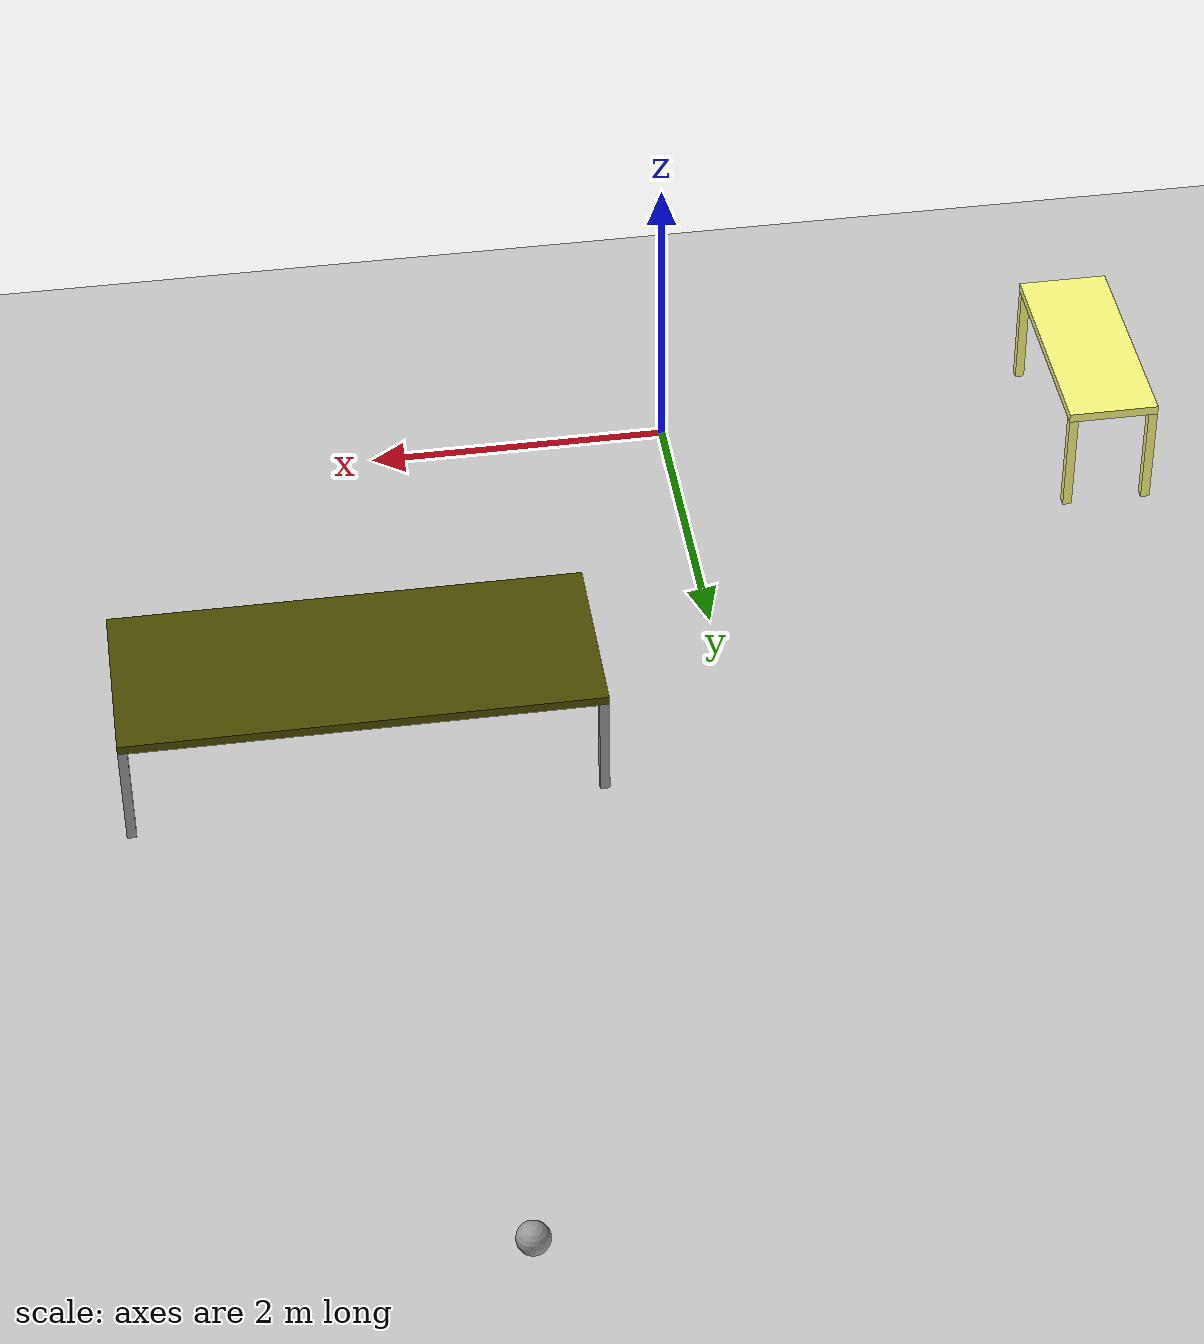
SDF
<sdf version="1.6">
 <world name="default">
  <model name="ground_plane">
   <static>1</static>
   <link name="link">
    <collision name="collision">
     <geometry><plane><normal>0 0 1</normal><size>100 100</size></plane></geometry>
     <surface><friction><ode><mu>100</mu><mu2>50</mu2></ode></friction></surface>
    </collision>
    <visual name="visual">
     <cast_shadows>0</cast_shadows>
     <geometry><plane><normal>0 0 1</normal><size>100 100</size></plane></geometry>
     <material>
      <script><uri>file://media/materials/scripts/gazebo.material</uri><name>Gazebo/Grey</name></script>
     </material>
    </visual>
   </link>
  </model>
  <model name="table_clone_5">
   <link name="link_0">
    <pose>0 2e-06 0.304 0 -0 0</pose>
    <inertial>
     <mass>1</mass>
     <inertia>
      <ixx>0.166667</ixx>
      <ixy>0</ixy>
      <ixz>0</ixz>
      <iyy>0.166667</iyy>
      <iyz>0</iyz>
      <izz>0.166667</izz>
     </inertia>
    </inertial>
    <visual name="visual">
     <geometry><box><size>0.6 1.5 0.06</size></box></geometry>
     <material>
      <lighting>1</lighting>
      <script><uri>file://media/materials/scripts/gazebo.material</uri><name>Gazebo/Grey</name></script>
      <shader type="pixel"><normal_map>__default__</normal_map></shader>
      <ambient>1 1 0.5 1</ambient>
      <diffuse>0.7 0.7 0.7 1</diffuse>
      <specular>0.01 0.01 0.01 1</specular>
      <emissive>0 0 0 1</emissive>
     </material>
    </visual>
    <collision name="collision">
     <geometry><box><size>0.6 1.5 0.06</size></box></geometry>
     <surface>
      <friction>
       <ode><mu>1</mu><mu2>1</mu2><fdir1>0 0 0</fdir1><slip1>0</slip1><slip2>0</slip2></ode>
       <torsional>
        <coefficient>1</coefficient>
        <patch_radius>0</patch_radius>
        <surface_radius>0</surface_radius>
        <use_patch_radius>1</use_patch_radius>
        <ode><slip>0</slip></ode>
       </torsional>
      </friction>
      <bounce><restitution_coefficient>0</restitution_coefficient><threshold>1e+06</threshold></bounce>
      <contact>
       <collide_without_contact>0</collide_without_contact>
       <collide_without_contact_bitmask>1</collide_without_contact_bitmask>
       <collide_bitmask>1</collide_bitmask>
       <ode>
        <soft_cfm>0</soft_cfm>
        <soft_erp>0.2</soft_erp>
        <kp>1e+13</kp>
        <kd>1</kd>
        <max_vel>0.01</max_vel>
        <min_depth>0</min_depth>
       </ode>
       <bullet>
        <split_impulse>1</split_impulse>
        <split_impulse_penetration_threshold>-0.01</split_impulse_penetration_threshold>
        <soft_cfm>0</soft_cfm>
        <soft_erp>0.2</soft_erp>
        <kp>1e+13</kp>
        <kd>1</kd>
       </bullet>
      </contact>
     </surface>
    </collision>
   </link>
   <link name="link_1">
    <pose>0.27 -0.719998 -0.076 0 -0 0</pose>
    <inertial>
     <mass>1</mass>
     <inertia>
      <ixx>0.166667</ixx>
      <ixy>0</ixy>
      <ixz>0</ixz>
      <iyy>0.166667</iyy>
      <iyz>0</iyz>
      <izz>0.166667</izz>
     </inertia>
    </inertial>
    <visual name="visual">
     <geometry><box><size>0.06 0.06 0.7</size></box></geometry>
     <material>
      <lighting>1</lighting>
      <script><uri>file://media/materials/scripts/gazebo.material</uri><name>Gazebo/Grey</name></script>
      <shader type="pixel"><normal_map>__default__</normal_map></shader>
      <ambient>1 1 0.5 1</ambient>
      <diffuse>0.7 0.7 0.7 1</diffuse>
      <specular>0.01 0.01 0.01 1</specular>
      <emissive>0 0 0 1</emissive>
     </material>
    </visual>
    <collision name="collision">
     <geometry><box><size>0.06 0.06 0.7</size></box></geometry>
     <surface>
      <friction>
       <ode><mu>1</mu><mu2>1</mu2><fdir1>0 0 0</fdir1><slip1>0</slip1><slip2>0</slip2></ode>
       <torsional>
        <coefficient>1</coefficient>
        <patch_radius>0</patch_radius>
        <surface_radius>0</surface_radius>
        <use_patch_radius>1</use_patch_radius>
        <ode><slip>0</slip></ode>
       </torsional>
      </friction>
      <bounce><restitution_coefficient>0</restitution_coefficient><threshold>1e+06</threshold></bounce>
      <contact>
       <collide_without_contact>0</collide_without_contact>
       <collide_without_contact_bitmask>1</collide_without_contact_bitmask>
       <collide_bitmask>1</collide_bitmask>
       <ode>
        <soft_cfm>0</soft_cfm>
        <soft_erp>0.2</soft_erp>
        <kp>1e+13</kp>
        <kd>1</kd>
        <max_vel>0.01</max_vel>
        <min_depth>0</min_depth>
       </ode>
       <bullet>
        <split_impulse>1</split_impulse>
        <split_impulse_penetration_threshold>-0.01</split_impulse_penetration_threshold>
        <soft_cfm>0</soft_cfm>
        <soft_erp>0.2</soft_erp>
        <kp>1e+13</kp>
        <kd>1</kd>
       </bullet>
      </contact>
     </surface>
    </collision>
   </link>
   <link name="link_1_clone">
    <pose>-0.27 -0.719998 -0.076 0 -0 0</pose>
    <inertial>
     <mass>1</mass>
     <inertia>
      <ixx>0.166667</ixx>
      <ixy>0</ixy>
      <ixz>0</ixz>
      <iyy>0.166667</iyy>
      <iyz>0</iyz>
      <izz>0.166667</izz>
     </inertia>
    </inertial>
    <visual name="visual">
     <geometry><box><size>0.06 0.06 0.7</size></box></geometry>
     <material>
      <lighting>1</lighting>
      <script><uri>file://media/materials/scripts/gazebo.material</uri><name>Gazebo/Grey</name></script>
      <shader type="pixel"><normal_map>__default__</normal_map></shader>
      <ambient>1 1 0.5 1</ambient>
      <diffuse>0.7 0.7 0.7 1</diffuse>
      <specular>0.01 0.01 0.01 1</specular>
      <emissive>0 0 0 1</emissive>
     </material>
    </visual>
    <collision name="collision">
     <geometry><box><size>0.06 0.06 0.7</size></box></geometry>
     <surface>
      <friction>
       <ode><mu>1</mu><mu2>1</mu2><fdir1>0 0 0</fdir1><slip1>0</slip1><slip2>0</slip2></ode>
       <torsional>
        <coefficient>1</coefficient>
        <patch_radius>0</patch_radius>
        <surface_radius>0</surface_radius>
        <use_patch_radius>1</use_patch_radius>
        <ode><slip>0</slip></ode>
       </torsional>
      </friction>
      <bounce><restitution_coefficient>0</restitution_coefficient><threshold>1e+06</threshold></bounce>
      <contact>
       <collide_without_contact>0</collide_without_contact>
       <collide_without_contact_bitmask>1</collide_without_contact_bitmask>
       <collide_bitmask>1</collide_bitmask>
       <ode>
        <soft_cfm>0</soft_cfm>
        <soft_erp>0.2</soft_erp>
        <kp>1e+13</kp>
        <kd>1</kd>
        <max_vel>0.01</max_vel>
        <min_depth>0</min_depth>
       </ode>
       <bullet>
        <split_impulse>1</split_impulse>
        <split_impulse_penetration_threshold>-0.01</split_impulse_penetration_threshold>
        <soft_cfm>0</soft_cfm>
        <soft_erp>0.2</soft_erp>
        <kp>1e+13</kp>
        <kd>1</kd>
       </bullet>
      </contact>
     </surface>
    </collision>
   </link>
   <link name="link_1_clone_0">
    <pose>0.27 0.720002 -0.076 0 -0 0</pose>
    <inertial>
     <mass>1</mass>
     <inertia>
      <ixx>0.166667</ixx>
      <ixy>0</ixy>
      <ixz>0</ixz>
      <iyy>0.166667</iyy>
      <iyz>0</iyz>
      <izz>0.166667</izz>
     </inertia>
    </inertial>
    <visual name="visual">
     <geometry><box><size>0.06 0.06 0.7</size></box></geometry>
     <material>
      <lighting>1</lighting>
      <script><uri>file://media/materials/scripts/gazebo.material</uri><name>Gazebo/Grey</name></script>
      <shader type="pixel"><normal_map>__default__</normal_map></shader>
      <ambient>1 1 0.5 1</ambient>
      <diffuse>0.7 0.7 0.7 1</diffuse>
      <specular>0.01 0.01 0.01 1</specular>
      <emissive>0 0 0 1</emissive>
     </material>
    </visual>
    <collision name="collision">
     <geometry><box><size>0.06 0.06 0.7</size></box></geometry>
     <surface>
      <friction>
       <ode><mu>1</mu><mu2>1</mu2><fdir1>0 0 0</fdir1><slip1>0</slip1><slip2>0</slip2></ode>
       <torsional>
        <coefficient>1</coefficient>
        <patch_radius>0</patch_radius>
        <surface_radius>0</surface_radius>
        <use_patch_radius>1</use_patch_radius>
        <ode><slip>0</slip></ode>
       </torsional>
      </friction>
      <bounce><restitution_coefficient>0</restitution_coefficient><threshold>1e+06</threshold></bounce>
      <contact>
       <collide_without_contact>0</collide_without_contact>
       <collide_without_contact_bitmask>1</collide_without_contact_bitmask>
       <collide_bitmask>1</collide_bitmask>
       <ode>
        <soft_cfm>0</soft_cfm>
        <soft_erp>0.2</soft_erp>
        <kp>1e+13</kp>
        <kd>1</kd>
        <max_vel>0.01</max_vel>
        <min_depth>0</min_depth>
       </ode>
       <bullet>
        <split_impulse>1</split_impulse>
        <split_impulse_penetration_threshold>-0.01</split_impulse_penetration_threshold>
        <soft_cfm>0</soft_cfm>
        <soft_erp>0.2</soft_erp>
        <kp>1e+13</kp>
        <kd>1</kd>
       </bullet>
      </contact>
     </surface>
    </collision>
   </link>
   <link name="link_1_clone_1">
    <pose>-0.27 0.720002 -0.076 0 -0 0</pose>
    <inertial>
     <mass>1</mass>
     <inertia>
      <ixx>0.166667</ixx>
      <ixy>0</ixy>
      <ixz>0</ixz>
      <iyy>0.166667</iyy>
      <iyz>0</iyz>
      <izz>0.166667</izz>
     </inertia>
    </inertial>
    <visual name="visual">
     <geometry><box><size>0.06 0.06 0.7</size></box></geometry>
     <material>
      <lighting>1</lighting>
      <script><uri>file://media/materials/scripts/gazebo.material</uri><name>Gazebo/Grey</name></script>
      <shader type="pixel"><normal_map>__default__</normal_map></shader>
      <ambient>1 1 0.5 1</ambient>
      <diffuse>0.7 0.7 0.7 1</diffuse>
      <specular>0.01 0.01 0.01 1</specular>
      <emissive>0 0 0 1</emissive>
     </material>
    </visual>
    <collision name="collision">
     <geometry><box><size>0.06 0.06 0.7</size></box></geometry>
     <surface>
      <friction>
       <ode><mu>1</mu><mu2>1</mu2><fdir1>0 0 0</fdir1><slip1>0</slip1><slip2>0</slip2></ode>
       <torsional>
        <coefficient>1</coefficient>
        <patch_radius>0</patch_radius>
        <surface_radius>0</surface_radius>
        <use_patch_radius>1</use_patch_radius>
        <ode><slip>0</slip></ode>
       </torsional>
      </friction>
      <bounce><restitution_coefficient>0</restitution_coefficient><threshold>1e+06</threshold></bounce>
      <contact>
       <collide_without_contact>0</collide_without_contact>
       <collide_without_contact_bitmask>1</collide_without_contact_bitmask>
       <collide_bitmask>1</collide_bitmask>
       <ode>
        <soft_cfm>0</soft_cfm>
        <soft_erp>0.2</soft_erp>
        <kp>1e+13</kp>
        <kd>1</kd>
        <max_vel>0.01</max_vel>
        <min_depth>0</min_depth>
       </ode>
       <bullet>
        <split_impulse>1</split_impulse>
        <split_impulse_penetration_threshold>-0.01</split_impulse_penetration_threshold>
        <soft_cfm>0</soft_cfm>
        <soft_erp>0.2</soft_erp>
        <kp>1e+13</kp>
        <kd>1</kd>
       </bullet>
      </contact>
     </surface>
    </collision>
   </link>
   <joint name="link_0_JOINT_0" type="fixed">
    <parent>link_0</parent>
    <child>link_1</child>
    <physics>
     <ode><limit><cfm>0</cfm><erp>0.2</erp></limit><suspension><cfm>0</cfm><erp>0.2</erp></suspension></ode>
    </physics>
   </joint>
   <joint name="link_0_JOINT_1" type="fixed">
    <parent>link_0</parent>
    <child>link_1_clone</child>
    <physics>
     <ode><limit><cfm>0</cfm><erp>0.2</erp></limit><suspension><cfm>0</cfm><erp>0.2</erp></suspension></ode>
    </physics>
   </joint>
   <joint name="link_0_JOINT_2" type="fixed">
    <parent>link_0</parent>
    <child>link_1_clone_1</child>
    <physics>
     <ode><limit><cfm>0</cfm><erp>0.2</erp></limit><suspension><cfm>0</cfm><erp>0.2</erp></suspension></ode>
    </physics>
   </joint>
   <joint name="link_0_JOINT_3" type="fixed">
    <parent>link_0</parent>
    <child>link_1_clone_0</child>
    <physics>
     <ode><limit><cfm>0</cfm><erp>0.2</erp></limit><suspension><cfm>0</cfm><erp>0.2</erp></suspension></ode>
    </physics>
   </joint>
   <static>0</static>
   <pose>-2.85466 0.440938 0.426 0 -1e-06 -0.000235</pose>
  </model>
  <model name="bigtable_0_clone">
   <link name="link_0">
    <pose>0 0 0.3 0 -0 0</pose>
    <inertial>
     <mass>1</mass>
     <inertia>
      <ixx>0.166667</ixx>
      <ixy>0</ixy>
      <ixz>0</ixz>
      <iyy>0.166667</iyy>
      <iyz>0</iyz>
      <izz>0.166667</izz>
     </inertia>
    </inertial>
    <visual name="visual">
     <geometry><box><size>1.2 3 0.06</size></box></geometry>
     <material>
      <lighting>1</lighting>
      <script><uri>file://media/materials/scripts/gazebo.material</uri><name>Gazebo/Grey</name></script>
      <shader type="pixel"><normal_map>__default__</normal_map></shader>
      <ambient>0.3 0.3 0 1</ambient>
      <diffuse>0.7 0.7 0.7 1</diffuse>
      <specular>0.01 0.01 0.01 1</specular>
      <emissive>0 0 0 1</emissive>
     </material>
    </visual>
    <collision name="collision">
     <geometry><box><size>1.2 3 0.06</size></box></geometry>
     <surface>
      <friction>
       <ode><mu>1</mu><mu2>1</mu2><fdir1>0 0 0</fdir1><slip1>0</slip1><slip2>0</slip2></ode>
       <torsional>
        <coefficient>1</coefficient>
        <patch_radius>0</patch_radius>
        <surface_radius>0</surface_radius>
        <use_patch_radius>1</use_patch_radius>
        <ode><slip>0</slip></ode>
       </torsional>
      </friction>
      <bounce><restitution_coefficient>0</restitution_coefficient><threshold>1e+06</threshold></bounce>
      <contact>
       <collide_without_contact>0</collide_without_contact>
       <collide_without_contact_bitmask>1</collide_without_contact_bitmask>
       <collide_bitmask>1</collide_bitmask>
       <ode>
        <soft_cfm>0</soft_cfm>
        <soft_erp>0.2</soft_erp>
        <kp>1e+13</kp>
        <kd>1</kd>
        <max_vel>0.01</max_vel>
        <min_depth>0</min_depth>
       </ode>
       <bullet>
        <split_impulse>1</split_impulse>
        <split_impulse_penetration_threshold>-0.01</split_impulse_penetration_threshold>
        <soft_cfm>0</soft_cfm>
        <soft_erp>0.2</soft_erp>
        <kp>1e+13</kp>
        <kd>1</kd>
       </bullet>
      </contact>
     </surface>
    </collision>
   </link>
   <link name="link_1">
    <pose>-0.57 -1.47 -0.076 0 -0 0</pose>
    <inertial>
     <mass>1</mass>
     <inertia>
      <ixx>0.166667</ixx>
      <ixy>0</ixy>
      <ixz>0</ixz>
      <iyy>0.166667</iyy>
      <iyz>0</iyz>
      <izz>0.166667</izz>
     </inertia>
    </inertial>
    <visual name="visual">
     <geometry><box><size>0.06 0.06 0.7</size></box></geometry>
     <material>
      <lighting>1</lighting>
      <script><uri>file://media/materials/scripts/gazebo.material</uri><name>Gazebo/Grey</name></script>
      <shader type="pixel"><normal_map>__default__</normal_map></shader>
      <ambient>0.3 0.3 0.3 1</ambient>
      <diffuse>0.7 0.7 0.7 1</diffuse>
      <specular>0.01 0.01 0.01 1</specular>
      <emissive>0 0 0 1</emissive>
     </material>
    </visual>
    <collision name="collision">
     <geometry><box><size>0.06 0.06 0.7</size></box></geometry>
     <surface>
      <friction>
       <ode><mu>1</mu><mu2>1</mu2><fdir1>0 0 0</fdir1><slip1>0</slip1><slip2>0</slip2></ode>
       <torsional>
        <coefficient>1</coefficient>
        <patch_radius>0</patch_radius>
        <surface_radius>0</surface_radius>
        <use_patch_radius>1</use_patch_radius>
        <ode><slip>0</slip></ode>
       </torsional>
      </friction>
      <bounce><restitution_coefficient>0</restitution_coefficient><threshold>1e+06</threshold></bounce>
      <contact>
       <collide_without_contact>0</collide_without_contact>
       <collide_without_contact_bitmask>1</collide_without_contact_bitmask>
       <collide_bitmask>1</collide_bitmask>
       <ode>
        <soft_cfm>0</soft_cfm>
        <soft_erp>0.2</soft_erp>
        <kp>1e+13</kp>
        <kd>1</kd>
        <max_vel>0.01</max_vel>
        <min_depth>0</min_depth>
       </ode>
       <bullet>
        <split_impulse>1</split_impulse>
        <split_impulse_penetration_threshold>-0.01</split_impulse_penetration_threshold>
        <soft_cfm>0</soft_cfm>
        <soft_erp>0.2</soft_erp>
        <kp>1e+13</kp>
        <kd>1</kd>
       </bullet>
      </contact>
     </surface>
    </collision>
   </link>
   <link name="link_1_clone">
    <pose>0.57 -1.47 -0.076 0 -0 0</pose>
    <inertial>
     <mass>1</mass>
     <inertia>
      <ixx>0.166667</ixx>
      <ixy>0</ixy>
      <ixz>0</ixz>
      <iyy>0.166667</iyy>
      <iyz>0</iyz>
      <izz>0.166667</izz>
     </inertia>
    </inertial>
    <visual name="visual">
     <geometry><box><size>0.06 0.06 0.7</size></box></geometry>
     <material>
      <lighting>1</lighting>
      <script><uri>file://media/materials/scripts/gazebo.material</uri><name>Gazebo/Grey</name></script>
      <shader type="pixel"><normal_map>__default__</normal_map></shader>
      <ambient>0.3 0.3 0.3 1</ambient>
      <diffuse>0.7 0.7 0.7 1</diffuse>
      <specular>0.01 0.01 0.01 1</specular>
      <emissive>0 0 0 1</emissive>
     </material>
    </visual>
    <collision name="collision">
     <geometry><box><size>0.06 0.06 0.7</size></box></geometry>
     <surface>
      <friction>
       <ode><mu>1</mu><mu2>1</mu2><fdir1>0 0 0</fdir1><slip1>0</slip1><slip2>0</slip2></ode>
       <torsional>
        <coefficient>1</coefficient>
        <patch_radius>0</patch_radius>
        <surface_radius>0</surface_radius>
        <use_patch_radius>1</use_patch_radius>
        <ode><slip>0</slip></ode>
       </torsional>
      </friction>
      <bounce><restitution_coefficient>0</restitution_coefficient><threshold>1e+06</threshold></bounce>
      <contact>
       <collide_without_contact>0</collide_without_contact>
       <collide_without_contact_bitmask>1</collide_without_contact_bitmask>
       <collide_bitmask>1</collide_bitmask>
       <ode>
        <soft_cfm>0</soft_cfm>
        <soft_erp>0.2</soft_erp>
        <kp>1e+13</kp>
        <kd>1</kd>
        <max_vel>0.01</max_vel>
        <min_depth>0</min_depth>
       </ode>
       <bullet>
        <split_impulse>1</split_impulse>
        <split_impulse_penetration_threshold>-0.01</split_impulse_penetration_threshold>
        <soft_cfm>0</soft_cfm>
        <soft_erp>0.2</soft_erp>
        <kp>1e+13</kp>
        <kd>1</kd>
       </bullet>
      </contact>
     </surface>
    </collision>
   </link>
   <link name="link_1_clone_0">
    <pose>0.57 1.47 -0.076 0 -0 0</pose>
    <inertial>
     <mass>1</mass>
     <inertia>
      <ixx>0.166667</ixx>
      <ixy>0</ixy>
      <ixz>0</ixz>
      <iyy>0.166667</iyy>
      <iyz>0</iyz>
      <izz>0.166667</izz>
     </inertia>
    </inertial>
    <visual name="visual">
     <geometry><box><size>0.06 0.06 0.7</size></box></geometry>
     <material>
      <lighting>1</lighting>
      <script><uri>file://media/materials/scripts/gazebo.material</uri><name>Gazebo/Grey</name></script>
      <shader type="pixel"><normal_map>__default__</normal_map></shader>
      <ambient>0.3 0.3 0.3 1</ambient>
      <diffuse>0.7 0.7 0.7 1</diffuse>
      <specular>0.01 0.01 0.01 1</specular>
      <emissive>0 0 0 1</emissive>
     </material>
    </visual>
    <collision name="collision">
     <geometry><box><size>0.06 0.06 0.7</size></box></geometry>
     <surface>
      <friction>
       <ode><mu>1</mu><mu2>1</mu2><fdir1>0 0 0</fdir1><slip1>0</slip1><slip2>0</slip2></ode>
       <torsional>
        <coefficient>1</coefficient>
        <patch_radius>0</patch_radius>
        <surface_radius>0</surface_radius>
        <use_patch_radius>1</use_patch_radius>
        <ode><slip>0</slip></ode>
       </torsional>
      </friction>
      <bounce><restitution_coefficient>0</restitution_coefficient><threshold>1e+06</threshold></bounce>
      <contact>
       <collide_without_contact>0</collide_without_contact>
       <collide_without_contact_bitmask>1</collide_without_contact_bitmask>
       <collide_bitmask>1</collide_bitmask>
       <ode>
        <soft_cfm>0</soft_cfm>
        <soft_erp>0.2</soft_erp>
        <kp>1e+13</kp>
        <kd>1</kd>
        <max_vel>0.01</max_vel>
        <min_depth>0</min_depth>
       </ode>
       <bullet>
        <split_impulse>1</split_impulse>
        <split_impulse_penetration_threshold>-0.01</split_impulse_penetration_threshold>
        <soft_cfm>0</soft_cfm>
        <soft_erp>0.2</soft_erp>
        <kp>1e+13</kp>
        <kd>1</kd>
       </bullet>
      </contact>
     </surface>
    </collision>
   </link>
   <link name="link_1_clone_1">
    <pose>-0.57 1.47 -0.076 0 -0 0</pose>
    <inertial>
     <mass>1</mass>
     <inertia>
      <ixx>0.166667</ixx>
      <ixy>0</ixy>
      <ixz>0</ixz>
      <iyy>0.166667</iyy>
      <iyz>0</iyz>
      <izz>0.166667</izz>
     </inertia>
    </inertial>
    <visual name="visual">
     <geometry><box><size>0.06 0.06 0.7</size></box></geometry>
     <material>
      <lighting>1</lighting>
      <script><uri>file://media/materials/scripts/gazebo.material</uri><name>Gazebo/Grey</name></script>
      <shader type="pixel"><normal_map>__default__</normal_map></shader>
      <ambient>0.3 0.3 0.3 1</ambient>
      <diffuse>0.7 0.7 0.7 1</diffuse>
      <specular>0.01 0.01 0.01 1</specular>
      <emissive>0 0 0 1</emissive>
     </material>
    </visual>
    <collision name="collision">
     <geometry><box><size>0.06 0.06 0.7</size></box></geometry>
     <surface>
      <friction>
       <ode><mu>1</mu><mu2>1</mu2><fdir1>0 0 0</fdir1><slip1>0</slip1><slip2>0</slip2></ode>
       <torsional>
        <coefficient>1</coefficient>
        <patch_radius>0</patch_radius>
        <surface_radius>0</surface_radius>
        <use_patch_radius>1</use_patch_radius>
        <ode><slip>0</slip></ode>
       </torsional>
      </friction>
      <bounce><restitution_coefficient>0</restitution_coefficient><threshold>1e+06</threshold></bounce>
      <contact>
       <collide_without_contact>0</collide_without_contact>
       <collide_without_contact_bitmask>1</collide_without_contact_bitmask>
       <collide_bitmask>1</collide_bitmask>
       <ode>
        <soft_cfm>0</soft_cfm>
        <soft_erp>0.2</soft_erp>
        <kp>1e+13</kp>
        <kd>1</kd>
        <max_vel>0.01</max_vel>
        <min_depth>0</min_depth>
       </ode>
       <bullet>
        <split_impulse>1</split_impulse>
        <split_impulse_penetration_threshold>-0.01</split_impulse_penetration_threshold>
        <soft_cfm>0</soft_cfm>
        <soft_erp>0.2</soft_erp>
        <kp>1e+13</kp>
        <kd>1</kd>
       </bullet>
      </contact>
     </surface>
    </collision>
   </link>
   <joint name="link_0_JOINT_0" type="screw">
    <parent>link_0</parent>
    <child>link_1</child>
    <pose>0 0 0.35 0 -0 0</pose>
    <axis>
     <xyz>0 0 1</xyz>
     <use_parent_model_frame>0</use_parent_model_frame>
     <limit><lower>-1e+16</lower><upper>1e+16</upper><effort>-1</effort><velocity>-1</velocity></limit>
     <dynamics>
      <spring_reference>0</spring_reference>
      <spring_stiffness>0</spring_stiffness>
      <damping>0</damping>
      <friction>0</friction>
     </dynamics>
    </axis>
    <physics>
     <ode><limit><cfm>0</cfm><erp>0.2</erp></limit><suspension><cfm>0</cfm><erp>0.2</erp></suspension></ode>
    </physics>
    <thread_pitch>1</thread_pitch>
   </joint>
   <joint name="link_0_JOINT_1" type="fixed">
    <parent>link_0</parent>
    <child>link_1_clone_1</child>
    <physics>
     <ode><limit><cfm>0</cfm><erp>0.2</erp></limit><suspension><cfm>0</cfm><erp>0.2</erp></suspension></ode>
    </physics>
   </joint>
   <joint name="link_0_JOINT_2" type="fixed">
    <parent>link_0</parent>
    <child>link_1_clone</child>
    <physics>
     <ode><limit><cfm>0</cfm><erp>0.2</erp></limit><suspension><cfm>0</cfm><erp>0.2</erp></suspension></ode>
    </physics>
   </joint>
   <joint name="link_0_JOINT_3" type="fixed">
    <parent>link_0</parent>
    <child>link_1_clone_0</child>
    <physics>
     <ode><limit><cfm>0</cfm><erp>0.2</erp></limit><suspension><cfm>0</cfm><erp>0.2</erp></suspension></ode>
    </physics>
   </joint>
   <static>0</static>
   <pose>2.3783 2.88653 0.426 0 0 -1.57308</pose>
  </model>
  <model name="my_ball">
   <link name="link_0">
    <inertial>
     <mass>1</mass>
     <inertia><ixx>0.1</ixx><ixy>0</ixy><ixz>0</ixz><iyy>0.1</iyy><iyz>0</iyz><izz>0.1</izz></inertia>
    </inertial>
    <visual name="visual">
     <geometry><sphere><radius>0.1</radius></sphere></geometry>
     <material>
      <lighting>1</lighting>
      <script><uri>file://media/materials/scripts/gazebo.material</uri><name>Gazebo/Grey</name></script>
      <shader type="pixel"><normal_map>__default__</normal_map></shader>
      <ambient>1 1 1 1</ambient>
      <diffuse>1 1 1 1</diffuse>
      <specular>1 1 1 1</specular>
      <emissive>1 1 1 1</emissive>
     </material>
    </visual>
    <collision name="collision">
     <geometry><sphere><radius>0.1</radius></sphere></geometry>
     <surface>
      <friction>
       <ode><mu>1</mu><mu2>1</mu2><fdir1>0 0 0</fdir1><slip1>0</slip1><slip2>0</slip2></ode>
       <torsional>
        <coefficient>1</coefficient>
        <patch_radius>0</patch_radius>
        <surface_radius>0</surface_radius>
        <use_patch_radius>1</use_patch_radius>
        <ode><slip>0</slip></ode>
       </torsional>
      </friction>
      <bounce><restitution_coefficient>0</restitution_coefficient><threshold>1e+06</threshold></bounce>
      <contact>
       <collide_without_contact>0</collide_without_contact>
       <collide_without_contact_bitmask>1</collide_without_contact_bitmask>
       <collide_bitmask>1</collide_bitmask>
       <ode>
        <soft_cfm>0</soft_cfm>
        <soft_erp>0.2</soft_erp>
        <kp>1e+13</kp>
        <kd>1</kd>
        <max_vel>0.01</max_vel>
        <min_depth>0</min_depth>
       </ode>
       <bullet>
        <split_impulse>1</split_impulse>
        <split_impulse_penetration_threshold>-0.01</split_impulse_penetration_threshold>
        <soft_cfm>0</soft_cfm>
        <soft_erp>0.2</soft_erp>
        <kp>1e+13</kp>
        <kd>1</kd>
       </bullet>
      </contact>
     </surface>
    </collision>
   </link>
   <static>0</static>
   <pose>1.84773 7.12756 0.1 -0.002229 0.014696 -0.003244</pose>
  </model>
 </world>
</sdf>
